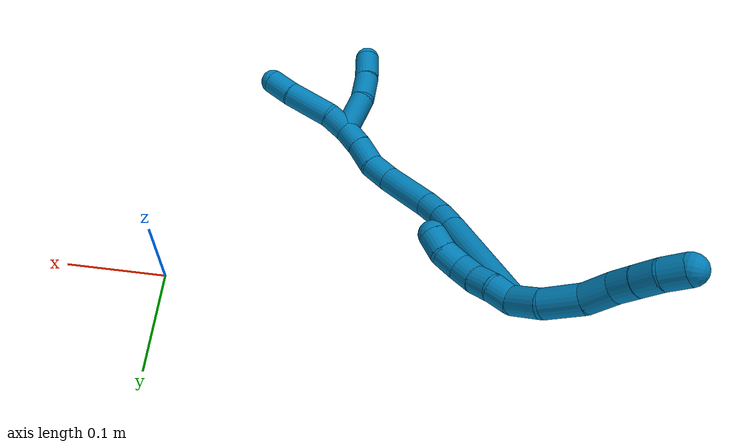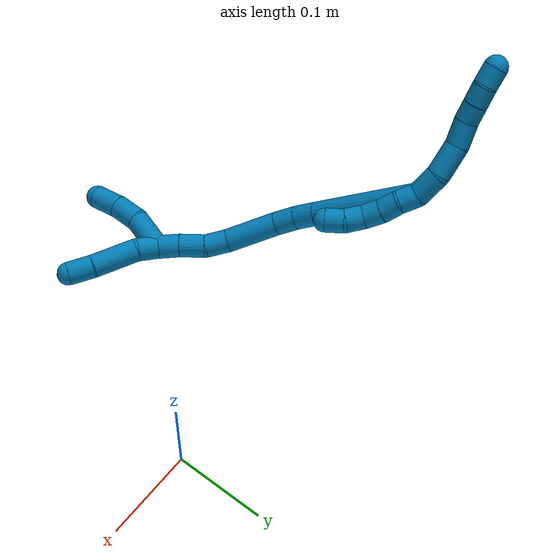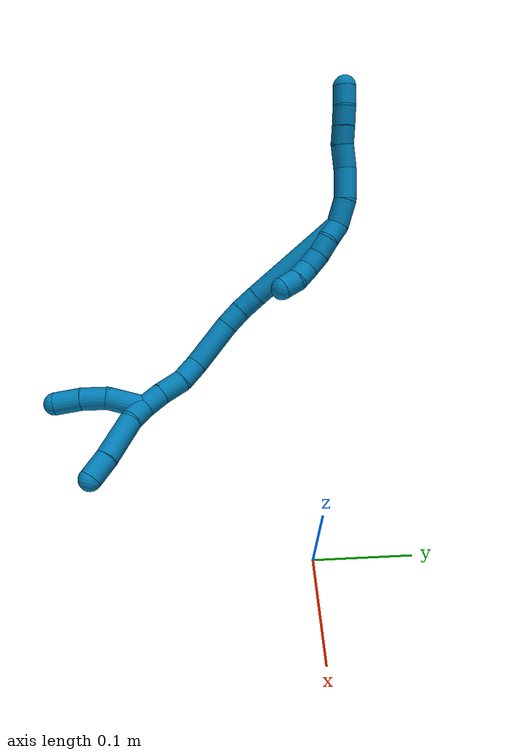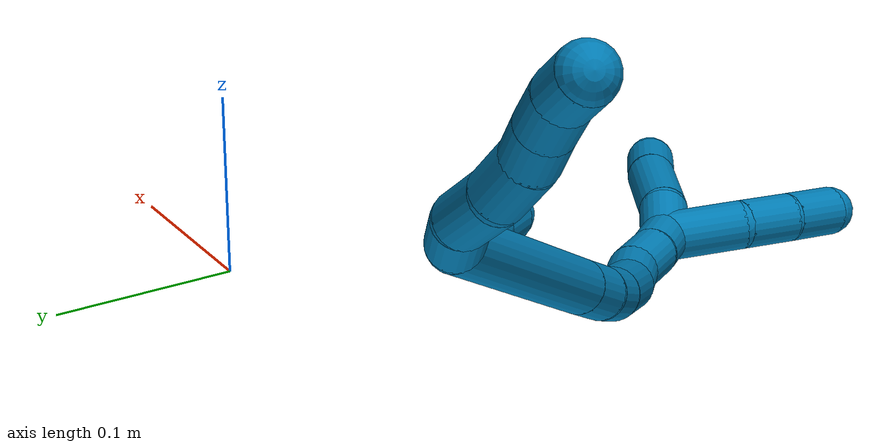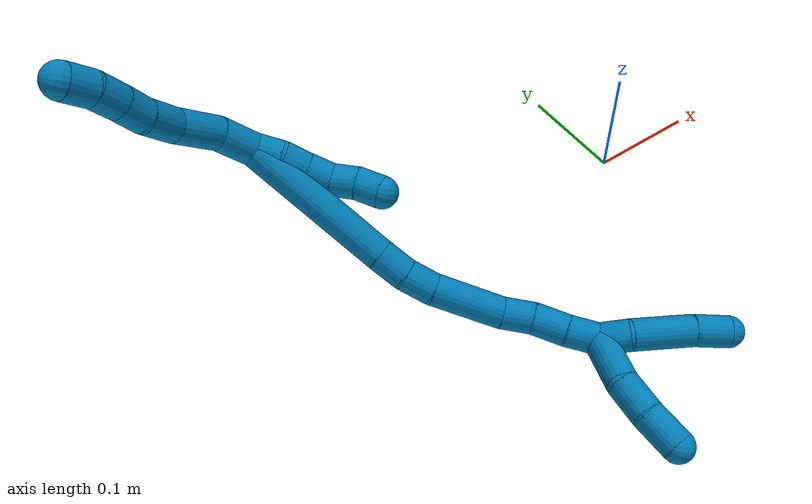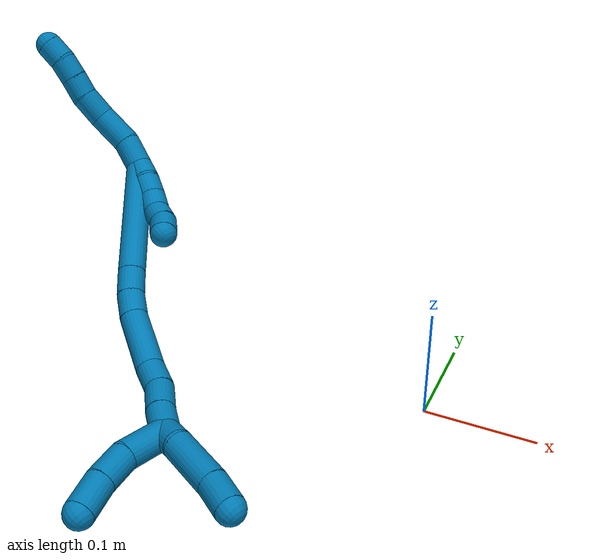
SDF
<sdf version="1.7">
 <world name="default">
  <model name="9">
   <static>0</static>
   <link name="9">
    <collision name="collision-cylinder-e_1_2_8">
     <pose>0.003637 -0.002012 0.01393 0.143457 0.252865 0.018266</pose>
     <geometry><cylinder><radius>0.0125</radius><length>0.029073</length></cylinder></geometry>
     <surface>
      <friction><ode><mu>1.16</mu><mu2>1.16</mu2><slip1>0</slip1><slip2>0</slip2></ode></friction>
      <contact><ode><kp>1e+06</kp><kd>1</kd><max_vel>0</max_vel><min_depth>0.001</min_depth></ode></contact>
     </surface>
    </collision>
    <visual name="visual-cylinder-e_1_2_8">
     <pose>0.003637 -0.002012 0.01393 0.143457 0.252865 0.018266</pose>
     <geometry><cylinder><radius>0.0125</radius><length>0.029073</length></cylinder></geometry>
     <material><ambient>0 0.490196 0.709804 1</ambient></material>
    </visual>
    <collision name="collision-cylinder-e_2_8_9">
     <pose>0.007575 -0.009624 0.04416 0.330897 0.017476 0.002918</pose>
     <geometry><cylinder><radius>0.0125</radius><length>0.034476</length></cylinder></geometry>
     <surface>
      <friction><ode><mu>1.16</mu><mu2>1.16</mu2><slip1>0</slip1><slip2>0</slip2></ode></friction>
      <contact><ode><kp>1e+06</kp><kd>1</kd><max_vel>0</max_vel><min_depth>0.001</min_depth></ode></contact>
     </surface>
    </collision>
    <visual name="visual-cylinder-e_2_8_9">
     <pose>0.007575 -0.009624 0.04416 0.330897 0.017476 0.002918</pose>
     <geometry><cylinder><radius>0.0125</radius><length>0.034476</length></cylinder></geometry>
     <material><ambient>0 0.490196 0.709804 1</ambient></material>
    </visual>
    <collision name="collision-cylinder-e_3_9_10">
     <pose>0.009439 -0.022129 0.071584 0.555594 0.118797 0.033914</pose>
     <geometry><cylinder><radius>0.0125</radius><length>0.026371</length></cylinder></geometry>
     <surface>
      <friction><ode><mu>1.16</mu><mu2>1.16</mu2><slip1>0</slip1><slip2>0</slip2></ode></friction>
      <contact><ode><kp>1e+06</kp><kd>1</kd><max_vel>0</max_vel><min_depth>0.001</min_depth></ode></contact>
     </surface>
    </collision>
    <visual name="visual-cylinder-e_3_9_10">
     <pose>0.009439 -0.022129 0.071584 0.555594 0.118797 0.033914</pose>
     <geometry><cylinder><radius>0.0125</radius><length>0.026371</length></cylinder></geometry>
     <material><ambient>0 0.490196 0.709804 1</ambient></material>
    </visual>
    <collision name="collision-cylinder-e_4_10_11">
     <pose>0.013987 -0.033361 0.09126 0.46831 0.301963 0.072548</pose>
     <geometry><cylinder><radius>0.0125</radius><length>0.020078</length></cylinder></geometry>
     <surface>
      <friction><ode><mu>1.16</mu><mu2>1.16</mu2><slip1>0</slip1><slip2>0</slip2></ode></friction>
      <contact><ode><kp>1e+06</kp><kd>1</kd><max_vel>0</max_vel><min_depth>0.001</min_depth></ode></contact>
     </surface>
    </collision>
    <visual name="visual-cylinder-e_4_10_11">
     <pose>0.013987 -0.033361 0.09126 0.46831 0.301963 0.072548</pose>
     <geometry><cylinder><radius>0.0125</radius><length>0.020078</length></cylinder></geometry>
     <material><ambient>0 0.490196 0.709804 1</ambient></material>
    </visual>
    <collision name="collision-cylinder-e_5_11_12">
     <pose>0.019517 -0.042012 0.108463 0.463518 0.257306 0.061042</pose>
     <geometry><cylinder><radius>0.0125</radius><length>0.020001</length></cylinder></geometry>
     <surface>
      <friction><ode><mu>1.16</mu><mu2>1.16</mu2><slip1>0</slip1><slip2>0</slip2></ode></friction>
      <contact><ode><kp>1e+06</kp><kd>1</kd><max_vel>0</max_vel><min_depth>0.001</min_depth></ode></contact>
     </surface>
    </collision>
    <visual name="visual-cylinder-e_5_11_12">
     <pose>0.019517 -0.042012 0.108463 0.463518 0.257306 0.061042</pose>
     <geometry><cylinder><radius>0.0125</radius><length>0.020001</length></cylinder></geometry>
     <material><ambient>0 0.490196 0.709804 1</ambient></material>
    </visual>
    <collision name="collision-cylinder-e_6_12_6">
     <pose>0.022759 -0.050039 0.126378 0.3803 0.06974 0.013429</pose>
     <geometry><cylinder><radius>0.0125</radius><length>0.020001</length></cylinder></geometry>
     <surface>
      <friction><ode><mu>1.16</mu><mu2>1.16</mu2><slip1>0</slip1><slip2>0</slip2></ode></friction>
      <contact><ode><kp>1e+06</kp><kd>1</kd><max_vel>0</max_vel><min_depth>0.001</min_depth></ode></contact>
     </surface>
    </collision>
    <visual name="visual-cylinder-e_6_12_6">
     <pose>0.022759 -0.050039 0.126378 0.3803 0.06974 0.013429</pose>
     <geometry><cylinder><radius>0.0125</radius><length>0.020001</length></cylinder></geometry>
     <material><ambient>0 0.490196 0.709804 1</ambient></material>
    </visual>
    <collision name="collision-cylinder-e_1_2_13">
     <pose>-0.000994 -0.002962 -0.009499 2.83933 -0.099596 -0.632542</pose>
     <geometry><cylinder><radius>0.0125</radius><length>0.02</length></cylinder></geometry>
     <surface>
      <friction><ode><mu>1.16</mu><mu2>1.16</mu2><slip1>0</slip1><slip2>0</slip2></ode></friction>
      <contact><ode><kp>1e+06</kp><kd>1</kd><max_vel>0</max_vel><min_depth>0.001</min_depth></ode></contact>
     </surface>
    </collision>
    <visual name="visual-cylinder-e_1_2_13">
     <pose>-0.000994 -0.002962 -0.009499 2.83933 -0.099596 -0.632542</pose>
     <geometry><cylinder><radius>0.0125</radius><length>0.02</length></cylinder></geometry>
     <material><ambient>0 0.490196 0.709804 1</ambient></material>
    </visual>
    <collision name="collision-cylinder-e_2_13_14">
     <pose>-0.004789 -0.007315 -0.028497 2.99624 -0.283869 -2.19918</pose>
     <geometry><cylinder><radius>0.0125</radius><length>0.02</length></cylinder></geometry>
     <surface>
      <friction><ode><mu>1.16</mu><mu2>1.16</mu2><slip1>0</slip1><slip2>0</slip2></ode></friction>
      <contact><ode><kp>1e+06</kp><kd>1</kd><max_vel>0</max_vel><min_depth>0.001</min_depth></ode></contact>
     </surface>
    </collision>
    <visual name="visual-cylinder-e_2_13_14">
     <pose>-0.004789 -0.007315 -0.028497 2.99624 -0.283869 -2.19918</pose>
     <geometry><cylinder><radius>0.0125</radius><length>0.02</length></cylinder></geometry>
     <material><ambient>0 0.490196 0.709804 1</ambient></material>
    </visual>
    <collision name="collision-cylinder-e_3_14_15">
     <pose>-0.009996 -0.011877 -0.047169 2.80866 -0.243017 -1.25692</pose>
     <geometry><cylinder><radius>0.0125</radius><length>0.02</length></cylinder></geometry>
     <surface>
      <friction><ode><mu>1.16</mu><mu2>1.16</mu2><slip1>0</slip1><slip2>0</slip2></ode></friction>
      <contact><ode><kp>1e+06</kp><kd>1</kd><max_vel>0</max_vel><min_depth>0.001</min_depth></ode></contact>
     </surface>
    </collision>
    <visual name="visual-cylinder-e_3_14_15">
     <pose>-0.009996 -0.011877 -0.047169 2.80866 -0.243017 -1.25692</pose>
     <geometry><cylinder><radius>0.0125</radius><length>0.02</length></cylinder></geometry>
     <material><ambient>0 0.490196 0.709804 1</ambient></material>
    </visual>
    <collision name="collision-cylinder-e_4_15_16">
     <pose>-0.011897 -0.019792 -0.065132 2.64682 0.05059 0.199682</pose>
     <geometry><cylinder><radius>0.0125</radius><length>0.02</length></cylinder></geometry>
     <surface>
      <friction><ode><mu>1.16</mu><mu2>1.16</mu2><slip1>0</slip1><slip2>0</slip2></ode></friction>
      <contact><ode><kp>1e+06</kp><kd>1</kd><max_vel>0</max_vel><min_depth>0.001</min_depth></ode></contact>
     </surface>
    </collision>
    <visual name="visual-cylinder-e_4_15_16">
     <pose>-0.011897 -0.019792 -0.065132 2.64682 0.05059 0.199682</pose>
     <geometry><cylinder><radius>0.0125</radius><length>0.02</length></cylinder></geometry>
     <material><ambient>0 0.490196 0.709804 1</ambient></material>
    </visual>
    <collision name="collision-cylinder-e_5_16_5">
     <pose>-0.012962 -0.031056 -0.081336 2.42015 -0.157766 -0.413117</pose>
     <geometry><cylinder><radius>0.0125</radius><length>0.02</length></cylinder></geometry>
     <surface>
      <friction><ode><mu>1.16</mu><mu2>1.16</mu2><slip1>0</slip1><slip2>0</slip2></ode></friction>
      <contact><ode><kp>1e+06</kp><kd>1</kd><max_vel>0</max_vel><min_depth>0.001</min_depth></ode></contact>
     </surface>
    </collision>
    <visual name="visual-cylinder-e_5_16_5">
     <pose>-0.012962 -0.031056 -0.081336 2.42015 -0.157766 -0.413117</pose>
     <geometry><cylinder><radius>0.0125</radius><length>0.02</length></cylinder></geometry>
     <material><ambient>0 0.490196 0.709804 1</ambient></material>
    </visual>
    <collision name="collision-cylinder-e_1_2_17">
     <pose>-0.030058 -0.020253 -0.046876 2.73377 -0.532017 -1.84319</pose>
     <geometry><cylinder><radius>0.0125</radius><length>0.118507</length></cylinder></geometry>
     <surface>
      <friction><ode><mu>1.16</mu><mu2>1.16</mu2><slip1>0</slip1><slip2>0</slip2></ode></friction>
      <contact><ode><kp>1e+06</kp><kd>1</kd><max_vel>0</max_vel><min_depth>0.001</min_depth></ode></contact>
     </surface>
    </collision>
    <visual name="visual-cylinder-e_1_2_17">
     <pose>-0.030058 -0.020253 -0.046876 2.73377 -0.532017 -1.84319</pose>
     <geometry><cylinder><radius>0.0125</radius><length>0.118507</length></cylinder></geometry>
     <material><ambient>0 0.490196 0.709804 1</ambient></material>
    </visual>
    <collision name="collision-cylinder-e_2_17_18">
     <pose>-0.065918 -0.044632 -0.10356 2.74336 -0.49926 -1.80253</pose>
     <geometry><cylinder><radius>0.0125</radius><length>0.024242</length></cylinder></geometry>
     <surface>
      <friction><ode><mu>1.16</mu><mu2>1.16</mu2><slip1>0</slip1><slip2>0</slip2></ode></friction>
      <contact><ode><kp>1e+06</kp><kd>1</kd><max_vel>0</max_vel><min_depth>0.001</min_depth></ode></contact>
     </surface>
    </collision>
    <visual name="visual-cylinder-e_2_17_18">
     <pose>-0.065918 -0.044632 -0.10356 2.74336 -0.49926 -1.80253</pose>
     <geometry><cylinder><radius>0.0125</radius><length>0.024242</length></cylinder></geometry>
     <material><ambient>0 0.490196 0.709804 1</ambient></material>
    </visual>
    <collision name="collision-cylinder-e_3_18_19">
     <pose>-0.075576 -0.05262 -0.123892 2.78987 -0.331212 -1.50956</pose>
     <geometry><cylinder><radius>0.0125</radius><length>0.023707</length></cylinder></geometry>
     <surface>
      <friction><ode><mu>1.16</mu><mu2>1.16</mu2><slip1>0</slip1><slip2>0</slip2></ode></friction>
      <contact><ode><kp>1e+06</kp><kd>1</kd><max_vel>0</max_vel><min_depth>0.001</min_depth></ode></contact>
     </surface>
    </collision>
    <visual name="visual-cylinder-e_3_18_19">
     <pose>-0.075576 -0.05262 -0.123892 2.78987 -0.331212 -1.50956</pose>
     <geometry><cylinder><radius>0.0125</radius><length>0.023707</length></cylinder></geometry>
     <material><ambient>0 0.490196 0.709804 1</ambient></material>
    </visual>
    <collision name="collision-cylinder-e_4_19_20">
     <pose>-0.084476 -0.06524 -0.160663 2.81953 -0.180331 -1.01578</pose>
     <geometry><cylinder><radius>0.0125</radius><length>0.056252</length></cylinder></geometry>
     <surface>
      <friction><ode><mu>1.16</mu><mu2>1.16</mu2><slip1>0</slip1><slip2>0</slip2></ode></friction>
      <contact><ode><kp>1e+06</kp><kd>1</kd><max_vel>0</max_vel><min_depth>0.001</min_depth></ode></contact>
     </surface>
    </collision>
    <visual name="visual-cylinder-e_4_19_20">
     <pose>-0.084476 -0.06524 -0.160663 2.81953 -0.180331 -1.01578</pose>
     <geometry><cylinder><radius>0.0125</radius><length>0.056252</length></cylinder></geometry>
     <material><ambient>0 0.490196 0.709804 1</ambient></material>
    </visual>
    <collision name="collision-cylinder-e_5_20_21">
     <pose>-0.089555 -0.079475 -0.19821 2.69028 -0.002779 -0.012106</pose>
     <geometry><cylinder><radius>0.0125</radius><length>0.025115</length></cylinder></geometry>
     <surface>
      <friction><ode><mu>1.16</mu><mu2>1.16</mu2><slip1>0</slip1><slip2>0</slip2></ode></friction>
      <contact><ode><kp>1e+06</kp><kd>1</kd><max_vel>0</max_vel><min_depth>0.001</min_depth></ode></contact>
     </surface>
    </collision>
    <visual name="visual-cylinder-e_5_20_21">
     <pose>-0.089555 -0.079475 -0.19821 2.69028 -0.002779 -0.012106</pose>
     <geometry><cylinder><radius>0.0125</radius><length>0.025115</length></cylinder></geometry>
     <material><ambient>0 0.490196 0.709804 1</ambient></material>
    </visual>
    <collision name="collision-cylinder-e_6_21_22">
     <pose>-0.091536 -0.093793 -0.220039 2.44311 -0.140632 -0.382092</pose>
     <geometry><cylinder><radius>0.0125</radius><length>0.027772</length></cylinder></geometry>
     <surface>
      <friction><ode><mu>1.16</mu><mu2>1.16</mu2><slip1>0</slip1><slip2>0</slip2></ode></friction>
      <contact><ode><kp>1e+06</kp><kd>1</kd><max_vel>0</max_vel><min_depth>0.001</min_depth></ode></contact>
     </surface>
    </collision>
    <visual name="visual-cylinder-e_6_21_22">
     <pose>-0.091536 -0.093793 -0.220039 2.44311 -0.140632 -0.382092</pose>
     <geometry><cylinder><radius>0.0125</radius><length>0.027772</length></cylinder></geometry>
     <material><ambient>0 0.490196 0.709804 1</ambient></material>
    </visual>
    <collision name="collision-cylinder-e_7_22_1">
     <pose>-0.094267 -0.109636 -0.240531 2.52902 -0.064358 -0.202883</pose>
     <geometry><cylinder><radius>0.0125</radius><length>0.024406</length></cylinder></geometry>
     <surface>
      <friction><ode><mu>1.16</mu><mu2>1.16</mu2><slip1>0</slip1><slip2>0</slip2></ode></friction>
      <contact><ode><kp>1e+06</kp><kd>1</kd><max_vel>0</max_vel><min_depth>0.001</min_depth></ode></contact>
     </surface>
    </collision>
    <visual name="visual-cylinder-e_7_22_1">
     <pose>-0.094267 -0.109636 -0.240531 2.52902 -0.064358 -0.202883</pose>
     <geometry><cylinder><radius>0.0125</radius><length>0.024406</length></cylinder></geometry>
     <material><ambient>0 0.490196 0.709804 1</ambient></material>
    </visual>
    <collision name="collision-cylinder-e_1_1_23">
     <pose>-0.091147 -0.123188 -0.25962 2.51909 0.33458 0.966754</pose>
     <geometry><cylinder><radius>0.0125</radius><length>0.023784</length></cylinder></geometry>
     <surface>
      <friction><ode><mu>1.16</mu><mu2>1.16</mu2><slip1>0</slip1><slip2>0</slip2></ode></friction>
      <contact><ode><kp>1e+06</kp><kd>1</kd><max_vel>0</max_vel><min_depth>0.001</min_depth></ode></contact>
     </surface>
    </collision>
    <visual name="visual-cylinder-e_1_1_23">
     <pose>-0.091147 -0.123188 -0.25962 2.51909 0.33458 0.966754</pose>
     <geometry><cylinder><radius>0.0125</radius><length>0.023784</length></cylinder></geometry>
     <material><ambient>0 0.490196 0.709804 1</ambient></material>
    </visual>
    <collision name="collision-cylinder-e_2_23_24">
     <pose>-0.081728 -0.138325 -0.291041 2.77392 0.226809 1.09917</pose>
     <geometry><cylinder><radius>0.0125</radius><length>0.04904</length></cylinder></geometry>
     <surface>
      <friction><ode><mu>1.16</mu><mu2>1.16</mu2><slip1>0</slip1><slip2>0</slip2></ode></friction>
      <contact><ode><kp>1e+06</kp><kd>1</kd><max_vel>0</max_vel><min_depth>0.001</min_depth></ode></contact>
     </surface>
    </collision>
    <visual name="visual-cylinder-e_2_23_24">
     <pose>-0.081728 -0.138325 -0.291041 2.77392 0.226809 1.09917</pose>
     <geometry><cylinder><radius>0.0125</radius><length>0.04904</length></cylinder></geometry>
     <material><ambient>0 0.490196 0.709804 1</ambient></material>
    </visual>
    <collision name="collision-cylinder-e_3_24_4">
     <pose>-0.074478 -0.152476 -0.325611 2.71606 0.128126 0.577311</pose>
     <geometry><cylinder><radius>0.0125</radius><length>0.027176</length></cylinder></geometry>
     <surface>
      <friction><ode><mu>1.16</mu><mu2>1.16</mu2><slip1>0</slip1><slip2>0</slip2></ode></friction>
      <contact><ode><kp>1e+06</kp><kd>1</kd><max_vel>0</max_vel><min_depth>0.001</min_depth></ode></contact>
     </surface>
    </collision>
    <visual name="visual-cylinder-e_3_24_4">
     <pose>-0.074478 -0.152476 -0.325611 2.71606 0.128126 0.577311</pose>
     <geometry><cylinder><radius>0.0125</radius><length>0.027176</length></cylinder></geometry>
     <material><ambient>0 0.490196 0.709804 1</ambient></material>
    </visual>
    <collision name="collision-cylinder-e_1_1_25">
     <pose>-0.106681 -0.133613 -0.251021 1.60178 -0.600416 -0.618149</pose>
     <geometry><cylinder><radius>0.0125</radius><length>0.041165</length></cylinder></geometry>
     <surface>
      <friction><ode><mu>1.16</mu><mu2>1.16</mu2><slip1>0</slip1><slip2>0</slip2></ode></friction>
      <contact><ode><kp>1e+06</kp><kd>1</kd><max_vel>0</max_vel><min_depth>0.001</min_depth></ode></contact>
     </surface>
    </collision>
    <visual name="visual-cylinder-e_1_1_25">
     <pose>-0.106681 -0.133613 -0.251021 1.60178 -0.600416 -0.618149</pose>
     <geometry><cylinder><radius>0.0125</radius><length>0.041165</length></cylinder></geometry>
     <material><ambient>0 0.490196 0.709804 1</ambient></material>
    </visual>
    <collision name="collision-cylinder-e_2_25_26">
     <pose>-0.126202 -0.16198 -0.255883 1.9345 -0.574569 -0.809833</pose>
     <geometry><cylinder><radius>0.0125</radius><length>0.029045</length></cylinder></geometry>
     <surface>
      <friction><ode><mu>1.16</mu><mu2>1.16</mu2><slip1>0</slip1><slip2>0</slip2></ode></friction>
      <contact><ode><kp>1e+06</kp><kd>1</kd><max_vel>0</max_vel><min_depth>0.001</min_depth></ode></contact>
     </surface>
    </collision>
    <visual name="visual-cylinder-e_2_25_26">
     <pose>-0.126202 -0.16198 -0.255883 1.9345 -0.574569 -0.809833</pose>
     <geometry><cylinder><radius>0.0125</radius><length>0.029045</length></cylinder></geometry>
     <material><ambient>0 0.490196 0.709804 1</ambient></material>
    </visual>
    <collision name="collision-cylinder-e_3_26_3">
     <pose>-0.14168 -0.184445 -0.266681 2.09903 -0.534315 -0.889526</pose>
     <geometry><cylinder><radius>0.0125</radius><length>0.02979</length></cylinder></geometry>
     <surface>
      <friction><ode><mu>1.16</mu><mu2>1.16</mu2><slip1>0</slip1><slip2>0</slip2></ode></friction>
      <contact><ode><kp>1e+06</kp><kd>1</kd><max_vel>0</max_vel><min_depth>0.001</min_depth></ode></contact>
     </surface>
    </collision>
    <visual name="visual-cylinder-e_3_26_3">
     <pose>-0.14168 -0.184445 -0.266681 2.09903 -0.534315 -0.889526</pose>
     <geometry><cylinder><radius>0.0125</radius><length>0.02979</length></cylinder></geometry>
     <material><ambient>0 0.490196 0.709804 1</ambient></material>
    </visual>
    <collision name="collision-sphere-3">
     <pose>-0.149266 -0.195517 -0.273142 0 -0 0</pose>
     <geometry><sphere><radius>0.0125</radius></sphere></geometry>
     <surface>
      <friction><ode><mu>1.16</mu><mu2>1.16</mu2><slip1>0</slip1><slip2>0</slip2></ode></friction>
      <contact><ode><kp>1e+06</kp><kd>1</kd><max_vel>0</max_vel><min_depth>0.001</min_depth></ode></contact>
     </surface>
    </collision>
    <visual name="visual-sphere-3">
     <pose>-0.149266 -0.195517 -0.273142 0 -0 0</pose>
     <geometry><sphere><radius>0.0125</radius></sphere></geometry>
     <material><ambient>0 0.490196 0.709804 1</ambient></material>
    </visual>
    <collision name="collision-sphere-26">
     <pose>-0.134095 -0.173373 -0.26022 0 -0 0</pose>
     <geometry><sphere><radius>0.0125</radius></sphere></geometry>
     <surface>
      <friction><ode><mu>1.16</mu><mu2>1.16</mu2><slip1>0</slip1><slip2>0</slip2></ode></friction>
      <contact><ode><kp>1e+06</kp><kd>1</kd><max_vel>0</max_vel><min_depth>0.001</min_depth></ode></contact>
     </surface>
    </collision>
    <visual name="visual-sphere-26">
     <pose>-0.134095 -0.173373 -0.26022 0 -0 0</pose>
     <geometry><sphere><radius>0.0125</radius></sphere></geometry>
     <material><ambient>0 0.490196 0.709804 1</ambient></material>
    </visual>
    <collision name="collision-sphere-25">
     <pose>-0.11831 -0.150587 -0.251547 0 -0 0</pose>
     <geometry><sphere><radius>0.0125</radius></sphere></geometry>
     <surface>
      <friction><ode><mu>1.16</mu><mu2>1.16</mu2><slip1>0</slip1><slip2>0</slip2></ode></friction>
      <contact><ode><kp>1e+06</kp><kd>1</kd><max_vel>0</max_vel><min_depth>0.001</min_depth></ode></contact>
     </surface>
    </collision>
    <visual name="visual-sphere-25">
     <pose>-0.11831 -0.150587 -0.251547 0 -0 0</pose>
     <geometry><sphere><radius>0.0125</radius></sphere></geometry>
     <material><ambient>0 0.490196 0.709804 1</ambient></material>
    </visual>
    <collision name="collision-sphere-4">
     <pose>-0.072742 -0.158039 -0.337886 0 -0 0</pose>
     <geometry><sphere><radius>0.0125</radius></sphere></geometry>
     <surface>
      <friction><ode><mu>1.16</mu><mu2>1.16</mu2><slip1>0</slip1><slip2>0</slip2></ode></friction>
      <contact><ode><kp>1e+06</kp><kd>1</kd><max_vel>0</max_vel><min_depth>0.001</min_depth></ode></contact>
     </surface>
    </collision>
    <visual name="visual-sphere-4">
     <pose>-0.072742 -0.158039 -0.337886 0 -0 0</pose>
     <geometry><sphere><radius>0.0125</radius></sphere></geometry>
     <material><ambient>0 0.490196 0.709804 1</ambient></material>
    </visual>
    <collision name="collision-sphere-24">
     <pose>-0.076215 -0.146913 -0.313336 0 -0 0</pose>
     <geometry><sphere><radius>0.0125</radius></sphere></geometry>
     <surface>
      <friction><ode><mu>1.16</mu><mu2>1.16</mu2><slip1>0</slip1><slip2>0</slip2></ode></friction>
      <contact><ode><kp>1e+06</kp><kd>1</kd><max_vel>0</max_vel><min_depth>0.001</min_depth></ode></contact>
     </surface>
    </collision>
    <visual name="visual-sphere-24">
     <pose>-0.076215 -0.146913 -0.313336 0 -0 0</pose>
     <geometry><sphere><radius>0.0125</radius></sphere></geometry>
     <material><ambient>0 0.490196 0.709804 1</ambient></material>
    </visual>
    <collision name="collision-sphere-23">
     <pose>-0.087242 -0.129737 -0.268746 0 -0 0</pose>
     <geometry><sphere><radius>0.0125</radius></sphere></geometry>
     <surface>
      <friction><ode><mu>1.16</mu><mu2>1.16</mu2><slip1>0</slip1><slip2>0</slip2></ode></friction>
      <contact><ode><kp>1e+06</kp><kd>1</kd><max_vel>0</max_vel><min_depth>0.001</min_depth></ode></contact>
     </surface>
    </collision>
    <visual name="visual-sphere-23">
     <pose>-0.087242 -0.129737 -0.268746 0 -0 0</pose>
     <geometry><sphere><radius>0.0125</radius></sphere></geometry>
     <material><ambient>0 0.490196 0.709804 1</ambient></material>
    </visual>
    <collision name="collision-sphere-1">
     <pose>-0.095052 -0.116638 -0.250495 0 -0 0</pose>
     <geometry><sphere><radius>0.0125</radius></sphere></geometry>
     <surface>
      <friction><ode><mu>1.16</mu><mu2>1.16</mu2><slip1>0</slip1><slip2>0</slip2></ode></friction>
      <contact><ode><kp>1e+06</kp><kd>1</kd><max_vel>0</max_vel><min_depth>0.001</min_depth></ode></contact>
     </surface>
    </collision>
    <visual name="visual-sphere-1">
     <pose>-0.095052 -0.116638 -0.250495 0 -0 0</pose>
     <geometry><sphere><radius>0.0125</radius></sphere></geometry>
     <material><ambient>0 0.490196 0.709804 1</ambient></material>
    </visual>
    <collision name="collision-sphere-22">
     <pose>-0.093483 -0.102635 -0.230568 0 -0 0</pose>
     <geometry><sphere><radius>0.0125</radius></sphere></geometry>
     <surface>
      <friction><ode><mu>1.16</mu><mu2>1.16</mu2><slip1>0</slip1><slip2>0</slip2></ode></friction>
      <contact><ode><kp>1e+06</kp><kd>1</kd><max_vel>0</max_vel><min_depth>0.001</min_depth></ode></contact>
     </surface>
    </collision>
    <visual name="visual-sphere-22">
     <pose>-0.093483 -0.102635 -0.230568 0 -0 0</pose>
     <geometry><sphere><radius>0.0125</radius></sphere></geometry>
     <material><ambient>0 0.490196 0.709804 1</ambient></material>
    </visual>
    <collision name="collision-sphere-21">
     <pose>-0.08959 -0.084952 -0.20951 0 -0 0</pose>
     <geometry><sphere><radius>0.0125</radius></sphere></geometry>
     <surface>
      <friction><ode><mu>1.16</mu><mu2>1.16</mu2><slip1>0</slip1><slip2>0</slip2></ode></friction>
      <contact><ode><kp>1e+06</kp><kd>1</kd><max_vel>0</max_vel><min_depth>0.001</min_depth></ode></contact>
     </surface>
    </collision>
    <visual name="visual-sphere-21">
     <pose>-0.08959 -0.084952 -0.20951 0 -0 0</pose>
     <geometry><sphere><radius>0.0125</radius></sphere></geometry>
     <material><ambient>0 0.490196 0.709804 1</ambient></material>
    </visual>
    <collision name="collision-sphere-12">
     <pose>0.022062 -0.046336 0.117114 0 -0 0</pose>
     <geometry><sphere><radius>0.0125</radius></sphere></geometry>
     <surface>
      <friction><ode><mu>1.16</mu><mu2>1.16</mu2><slip1>0</slip1><slip2>0</slip2></ode></friction>
      <contact><ode><kp>1e+06</kp><kd>1</kd><max_vel>0</max_vel><min_depth>0.001</min_depth></ode></contact>
     </surface>
    </collision>
    <visual name="visual-sphere-12">
     <pose>0.022062 -0.046336 0.117114 0 -0 0</pose>
     <geometry><sphere><radius>0.0125</radius></sphere></geometry>
     <material><ambient>0 0.490196 0.709804 1</ambient></material>
    </visual>
    <collision name="collision-sphere-11">
     <pose>0.016973 -0.037688 0.099813 0 -0 0</pose>
     <geometry><sphere><radius>0.0125</radius></sphere></geometry>
     <surface>
      <friction><ode><mu>1.16</mu><mu2>1.16</mu2><slip1>0</slip1><slip2>0</slip2></ode></friction>
      <contact><ode><kp>1e+06</kp><kd>1</kd><max_vel>0</max_vel><min_depth>0.001</min_depth></ode></contact>
     </surface>
    </collision>
    <visual name="visual-sphere-11">
     <pose>0.016973 -0.037688 0.099813 0 -0 0</pose>
     <geometry><sphere><radius>0.0125</radius></sphere></geometry>
     <material><ambient>0 0.490196 0.709804 1</ambient></material>
    </visual>
    <collision name="collision-sphere-10">
     <pose>0.011002 -0.029035 0.082707 0 -0 0</pose>
     <geometry><sphere><radius>0.0125</radius></sphere></geometry>
     <surface>
      <friction><ode><mu>1.16</mu><mu2>1.16</mu2><slip1>0</slip1><slip2>0</slip2></ode></friction>
      <contact><ode><kp>1e+06</kp><kd>1</kd><max_vel>0</max_vel><min_depth>0.001</min_depth></ode></contact>
     </surface>
    </collision>
    <visual name="visual-sphere-10">
     <pose>0.011002 -0.029035 0.082707 0 -0 0</pose>
     <geometry><sphere><radius>0.0125</radius></sphere></geometry>
     <material><ambient>0 0.490196 0.709804 1</ambient></material>
    </visual>
    <collision name="collision-sphere-9">
     <pose>0.007876 -0.015224 0.06046 0 -0 0</pose>
     <geometry><sphere><radius>0.0125</radius></sphere></geometry>
     <surface>
      <friction><ode><mu>1.16</mu><mu2>1.16</mu2><slip1>0</slip1><slip2>0</slip2></ode></friction>
      <contact><ode><kp>1e+06</kp><kd>1</kd><max_vel>0</max_vel><min_depth>0.001</min_depth></ode></contact>
     </surface>
    </collision>
    <visual name="visual-sphere-9">
     <pose>0.007876 -0.015224 0.06046 0 -0 0</pose>
     <geometry><sphere><radius>0.0125</radius></sphere></geometry>
     <material><ambient>0 0.490196 0.709804 1</ambient></material>
    </visual>
    <collision name="collision-sphere-2">
     <geometry><sphere><radius>0.0125</radius></sphere></geometry>
     <surface>
      <friction><ode><mu>1.16</mu><mu2>1.16</mu2><slip1>0</slip1><slip2>0</slip2></ode></friction>
      <contact><ode><kp>1e+06</kp><kd>1</kd><max_vel>0</max_vel><min_depth>0.001</min_depth></ode></contact>
     </surface>
    </collision>
    <visual name="visual-sphere-2">
     <geometry><sphere><radius>0.0125</radius></sphere></geometry>
     <material><ambient>0 0.490196 0.709804 1</ambient></material>
    </visual>
    <collision name="collision-sphere-19">
     <pose>-0.079431 -0.056482 -0.134415 0 -0 0</pose>
     <geometry><sphere><radius>0.0125</radius></sphere></geometry>
     <surface>
      <friction><ode><mu>1.16</mu><mu2>1.16</mu2><slip1>0</slip1><slip2>0</slip2></ode></friction>
      <contact><ode><kp>1e+06</kp><kd>1</kd><max_vel>0</max_vel><min_depth>0.001</min_depth></ode></contact>
     </surface>
    </collision>
    <visual name="visual-sphere-19">
     <pose>-0.079431 -0.056482 -0.134415 0 -0 0</pose>
     <geometry><sphere><radius>0.0125</radius></sphere></geometry>
     <material><ambient>0 0.490196 0.709804 1</ambient></material>
    </visual>
    <collision name="collision-sphere-8">
     <pose>0.007274 -0.004024 0.02786 0 -0 0</pose>
     <geometry><sphere><radius>0.0125</radius></sphere></geometry>
     <surface>
      <friction><ode><mu>1.16</mu><mu2>1.16</mu2><slip1>0</slip1><slip2>0</slip2></ode></friction>
      <contact><ode><kp>1e+06</kp><kd>1</kd><max_vel>0</max_vel><min_depth>0.001</min_depth></ode></contact>
     </surface>
    </collision>
    <visual name="visual-sphere-8">
     <pose>0.007274 -0.004024 0.02786 0 -0 0</pose>
     <geometry><sphere><radius>0.0125</radius></sphere></geometry>
     <material><ambient>0 0.490196 0.709804 1</ambient></material>
    </visual>
    <collision name="collision-sphere-6">
     <pose>0.023456 -0.053742 0.135641 0 -0 0</pose>
     <geometry><sphere><radius>0.0125</radius></sphere></geometry>
     <surface>
      <friction><ode><mu>1.16</mu><mu2>1.16</mu2><slip1>0</slip1><slip2>0</slip2></ode></friction>
      <contact><ode><kp>1e+06</kp><kd>1</kd><max_vel>0</max_vel><min_depth>0.001</min_depth></ode></contact>
     </surface>
    </collision>
    <visual name="visual-sphere-6">
     <pose>0.023456 -0.053742 0.135641 0 -0 0</pose>
     <geometry><sphere><radius>0.0125</radius></sphere></geometry>
     <material><ambient>0 0.490196 0.709804 1</ambient></material>
    </visual>
    <collision name="collision-sphere-13">
     <pose>-0.001989 -0.005924 -0.018999 0 -0 0</pose>
     <geometry><sphere><radius>0.0125</radius></sphere></geometry>
     <surface>
      <friction><ode><mu>1.16</mu><mu2>1.16</mu2><slip1>0</slip1><slip2>0</slip2></ode></friction>
      <contact><ode><kp>1e+06</kp><kd>1</kd><max_vel>0</max_vel><min_depth>0.001</min_depth></ode></contact>
     </surface>
    </collision>
    <visual name="visual-sphere-13">
     <pose>-0.001989 -0.005924 -0.018999 0 -0 0</pose>
     <geometry><sphere><radius>0.0125</radius></sphere></geometry>
     <material><ambient>0 0.490196 0.709804 1</ambient></material>
    </visual>
    <collision name="collision-sphere-14">
     <pose>-0.00759 -0.008705 -0.037996 0 -0 0</pose>
     <geometry><sphere><radius>0.0125</radius></sphere></geometry>
     <surface>
      <friction><ode><mu>1.16</mu><mu2>1.16</mu2><slip1>0</slip1><slip2>0</slip2></ode></friction>
      <contact><ode><kp>1e+06</kp><kd>1</kd><max_vel>0</max_vel><min_depth>0.001</min_depth></ode></contact>
     </surface>
    </collision>
    <visual name="visual-sphere-14">
     <pose>-0.00759 -0.008705 -0.037996 0 -0 0</pose>
     <geometry><sphere><radius>0.0125</radius></sphere></geometry>
     <material><ambient>0 0.490196 0.709804 1</ambient></material>
    </visual>
    <collision name="collision-sphere-15">
     <pose>-0.012403 -0.015049 -0.056342 0 -0 0</pose>
     <geometry><sphere><radius>0.0125</radius></sphere></geometry>
     <surface>
      <friction><ode><mu>1.16</mu><mu2>1.16</mu2><slip1>0</slip1><slip2>0</slip2></ode></friction>
      <contact><ode><kp>1e+06</kp><kd>1</kd><max_vel>0</max_vel><min_depth>0.001</min_depth></ode></contact>
     </surface>
    </collision>
    <visual name="visual-sphere-15">
     <pose>-0.012403 -0.015049 -0.056342 0 -0 0</pose>
     <geometry><sphere><radius>0.0125</radius></sphere></geometry>
     <material><ambient>0 0.490196 0.709804 1</ambient></material>
    </visual>
    <collision name="collision-sphere-16">
     <pose>-0.011391 -0.024534 -0.073921 0 -0 0</pose>
     <geometry><sphere><radius>0.0125</radius></sphere></geometry>
     <surface>
      <friction><ode><mu>1.16</mu><mu2>1.16</mu2><slip1>0</slip1><slip2>0</slip2></ode></friction>
      <contact><ode><kp>1e+06</kp><kd>1</kd><max_vel>0</max_vel><min_depth>0.001</min_depth></ode></contact>
     </surface>
    </collision>
    <visual name="visual-sphere-16">
     <pose>-0.011391 -0.024534 -0.073921 0 -0 0</pose>
     <geometry><sphere><radius>0.0125</radius></sphere></geometry>
     <material><ambient>0 0.490196 0.709804 1</ambient></material>
    </visual>
    <collision name="collision-sphere-5">
     <pose>-0.014534 -0.037579 -0.088752 0 -0 0</pose>
     <geometry><sphere><radius>0.0125</radius></sphere></geometry>
     <surface>
      <friction><ode><mu>1.16</mu><mu2>1.16</mu2><slip1>0</slip1><slip2>0</slip2></ode></friction>
      <contact><ode><kp>1e+06</kp><kd>1</kd><max_vel>0</max_vel><min_depth>0.001</min_depth></ode></contact>
     </surface>
    </collision>
    <visual name="visual-sphere-5">
     <pose>-0.014534 -0.037579 -0.088752 0 -0 0</pose>
     <geometry><sphere><radius>0.0125</radius></sphere></geometry>
     <material><ambient>0 0.490196 0.709804 1</ambient></material>
    </visual>
    <collision name="collision-sphere-17">
     <pose>-0.060115 -0.040505 -0.093751 0 -0 0</pose>
     <geometry><sphere><radius>0.0125</radius></sphere></geometry>
     <surface>
      <friction><ode><mu>1.16</mu><mu2>1.16</mu2><slip1>0</slip1><slip2>0</slip2></ode></friction>
      <contact><ode><kp>1e+06</kp><kd>1</kd><max_vel>0</max_vel><min_depth>0.001</min_depth></ode></contact>
     </surface>
    </collision>
    <visual name="visual-sphere-17">
     <pose>-0.060115 -0.040505 -0.093751 0 -0 0</pose>
     <geometry><sphere><radius>0.0125</radius></sphere></geometry>
     <material><ambient>0 0.490196 0.709804 1</ambient></material>
    </visual>
    <collision name="collision-sphere-18">
     <pose>-0.071722 -0.048759 -0.113369 0 -0 0</pose>
     <geometry><sphere><radius>0.0125</radius></sphere></geometry>
     <surface>
      <friction><ode><mu>1.16</mu><mu2>1.16</mu2><slip1>0</slip1><slip2>0</slip2></ode></friction>
      <contact><ode><kp>1e+06</kp><kd>1</kd><max_vel>0</max_vel><min_depth>0.001</min_depth></ode></contact>
     </surface>
    </collision>
    <visual name="visual-sphere-18">
     <pose>-0.071722 -0.048759 -0.113369 0 -0 0</pose>
     <geometry><sphere><radius>0.0125</radius></sphere></geometry>
     <material><ambient>0 0.490196 0.709804 1</ambient></material>
    </visual>
    <collision name="collision-sphere-20">
     <pose>-0.08952 -0.073998 -0.18691 0 -0 0</pose>
     <geometry><sphere><radius>0.0125</radius></sphere></geometry>
     <surface>
      <friction><ode><mu>1.16</mu><mu2>1.16</mu2><slip1>0</slip1><slip2>0</slip2></ode></friction>
      <contact><ode><kp>1e+06</kp><kd>1</kd><max_vel>0</max_vel><min_depth>0.001</min_depth></ode></contact>
     </surface>
    </collision>
    <visual name="visual-sphere-20">
     <pose>-0.08952 -0.073998 -0.18691 0 -0 0</pose>
     <geometry><sphere><radius>0.0125</radius></sphere></geometry>
     <material><ambient>0 0.490196 0.709804 1</ambient></material>
    </visual>
    <inertial>
     <pose>-0.051125 -0.066903 -0.115058 0 -0 0</pose>
     <mass>0.75</mass>
     <inertia>
      <ixx>-0.000128</ixx>
      <ixy>0</ixy>
      <ixz>0</ixz>
      <iyy>-0.000104</iyy>
      <iyz>0</iyz>
      <izz>0.000141</izz>
     </inertia>
    </inertial>
   </link>
   <pose>-0.317985 0.053287 0.156589 -0.902956 -0.772963 0.702281</pose>
  </model>
 </world>
</sdf>
